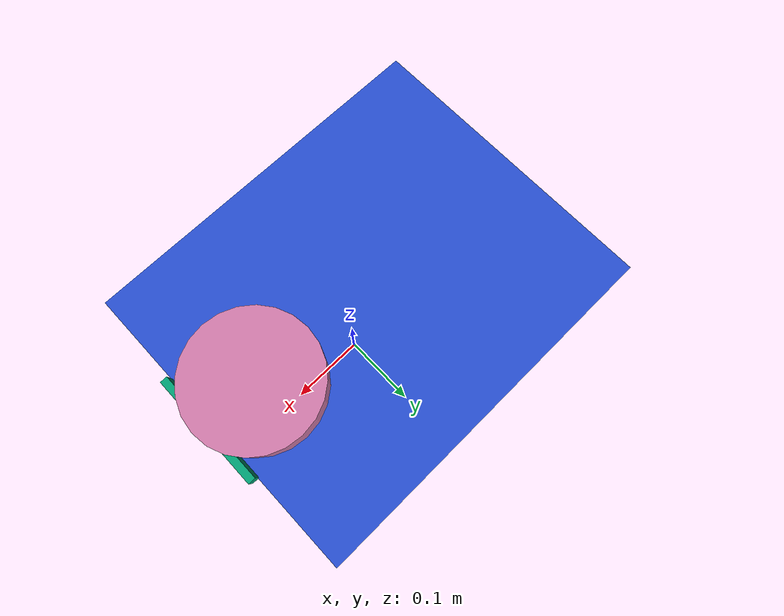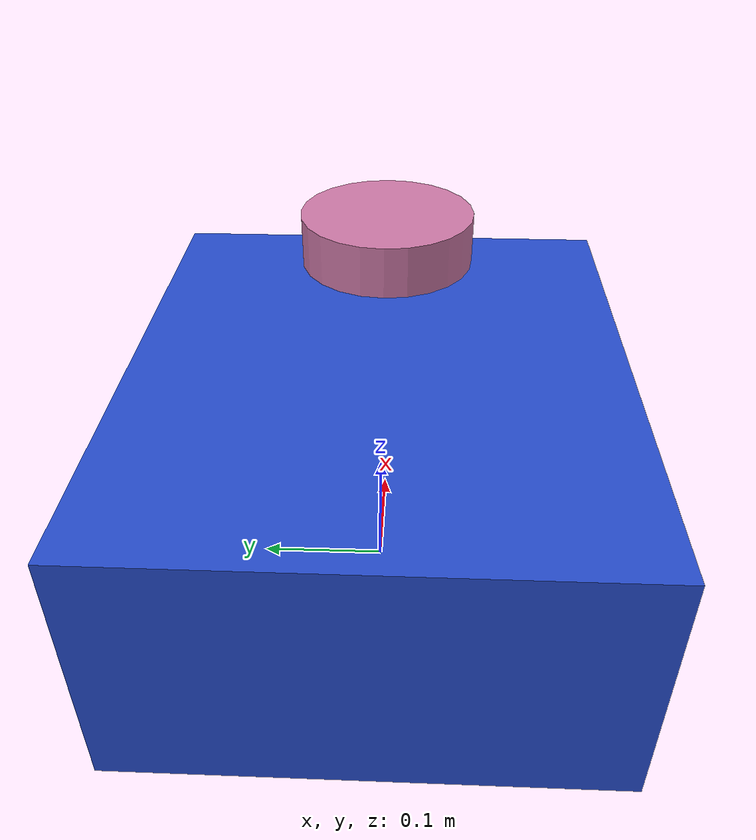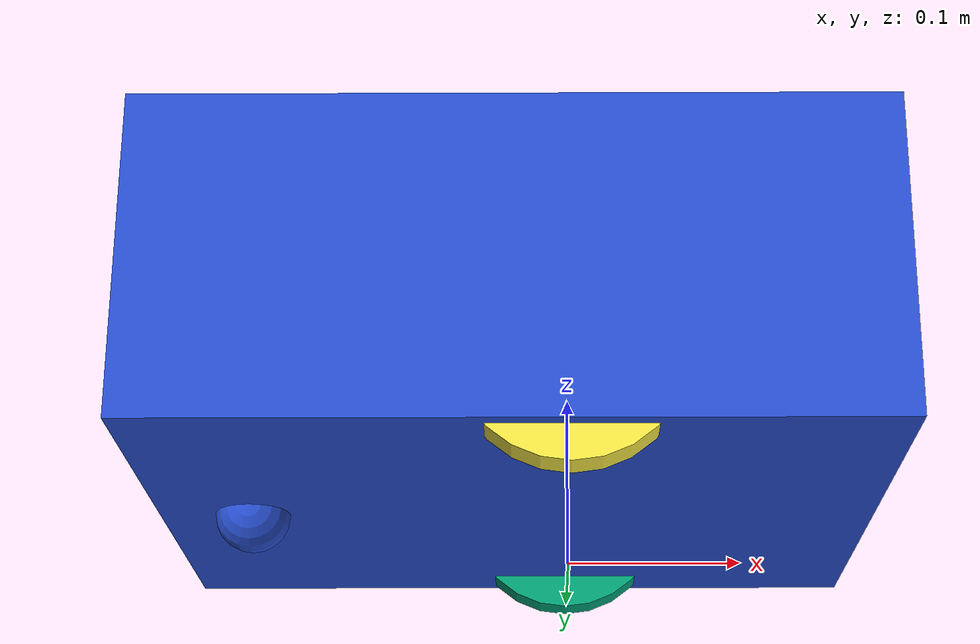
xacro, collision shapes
<?xml version="1.0" ?>
<robot name="AIEdu" xmlns:xacro="http://ros.org/wiki/xacro">
  <xacro:include filename="$(find robot_description)/urdf/common_properties.xacro"/>

  <xacro:property name="r200_cam_rgb_px" value="0.005"/>
  <xacro:property name="r200_cam_rgb_py" value="0.018"/>
  <xacro:property name="r200_cam_rgb_pz" value="0.013"/>
  <xacro:property name="r200_cam_depth_offset" value="0.01"/>

  <link name="base_footprint"/>

  <joint name="base_joint" type="fixed">
    <parent link="base_footprint"/>
    <child link="base_link" />
    <origin xyz="0 0 0.1225" rpy="0 0 0"/>
  </joint>

  <link name="base_link">
    <visual>
      <origin xyz="0.1275 0 0.0" rpy="0 0 0"/>
      <geometry>
        <box size="0.105 0.350 0.185"/>
      </geometry>
      <material name="blue"/>
    </visual>
    <visual>
      <origin xyz="0.0 0 0.0" rpy="0 0 0"/>
      <geometry>
        <box size="0.150 0.290 0.185"/>
      </geometry>
      <material name="blue"/>
    </visual>
    <visual>
      <origin xyz="-0.1575 0 0.0" rpy="0 0 0"/>
      <geometry>
        <box size="0.165 0.350 0.185"/>
      </geometry>
      <material name="blue"/>
    </visual>
    <collision>
      <origin xyz="-0.030 0 0.0" rpy="0 0 0"/>
      <geometry>
        <box size="0.420 0.350 0.185"/>
      </geometry>
    </collision>
    <inertial>
      <origin xyz="-0.030 0 0.0" rpy="0 0 0"/>
      <mass value="1"/>
      <inertia ixx="0.01" ixy="0.0" ixz="0.0"
               iyy="0.01" iyz="0.0"
               izz="0.01" />
    </inertial>
  </link>

  <joint name="wheel_left_joint" type="continuous">
    <parent link="base_link"/>
    <child link="wheel_left_link"/>
    <origin xyz="0.0 0.155 -0.050" rpy="${-M_PI*0.5} 0 0"/>
    <axis xyz="0 0 1"/>
  </joint>

  <link name="wheel_left_link">
    <visual>
      <origin xyz="0 0 0" rpy="${M_PI*0.5} 0 0"/>
      <geometry>
        <mesh filename="package://robot_description/meshes/wheels/left_tire.stl" scale="0.002045 0.00122 0.002045"/>
      </geometry>
      <material name="dark"/>
    </visual>
    <collision>
      <origin rpy="0 0 0" xyz="0 0 0"/>
      <geometry>
        <cylinder length="0.022" radius="0.0625"/>
      </geometry>
    </collision>
    <inertial>
      <origin xyz="0 0 0" />
      <mass value="0.01" />
      <inertia ixx="0.001" ixy="0.0" ixz="0.0"
               iyy="0.001" iyz="0.0"
               izz="0.001" />
    </inertial>
  </link>

  <joint name="wheel_right_joint" type="continuous">
    <parent link="base_link"/>
    <child link="wheel_right_link"/>
    <origin xyz="0.0 -0.155 -0.050" rpy="${-M_PI*0.5} 0 0"/>
    <axis xyz="0 0 1"/>
  </joint>

  <link name="wheel_right_link">
    <visual>
      <origin xyz="0 0 0" rpy="${M_PI*0.5} 0 0"/>
      <geometry>
        <mesh filename="package://robot_description/meshes/wheels/right_tire.stl" scale="0.002045 0.00122 0.002045"/>
      </geometry>
      <material name="dark"/>
    </visual>
    <collision>
      <origin rpy="0 0 0" xyz="0 0 0"/>
      <geometry>
        <cylinder length="0.022" radius="0.0625"/>
      </geometry>
    </collision>
    <inertial>
      <origin xyz="0 0 0" />
      <mass value="0.01" />
      <inertia ixx="0.001" ixy="0.0" ixz="0.0"
               iyy="0.001" iyz="0.0"
               izz="0.001" />
    </inertial>
  </link>

  <joint name="caster_back_joint" type="fixed">
    <parent link="base_link"/>
    <child link="caster_back_link"/>
    <origin xyz="-0.185 0 -0.093" rpy="${-M_PI*0.5} 0 0"/>
  </joint>

  <link name="caster_back_link">
    <visual>
      <origin xyz="0.0 0 0.0" rpy="0 0 0"/>
      <geometry>
        <sphere radius="0.022"/>
      </geometry>
      <material name="blue"/>
    </visual>
    <collision>
      <origin rpy="0 0 0" xyz="0 0 0"/>
      <geometry>
        <sphere radius="0.022"/>
      </geometry>
    </collision>

    <inertial>
      <origin xyz="0 0 0" />
      <mass value="0.01" />
      <inertia ixx="0.001" ixy="0.0" ixz="0.0"
               iyy="0.001" iyz="0.0"
               izz="0.001" />
    </inertial>
  </link>

  <joint name="imu_joint" type="fixed">
    <parent link="base_link"/>
    <child link="imu_link"/>
    <origin xyz="0.050 0 0" rpy="0 0 0"/>
  </joint>

  <link name="imu_link"/>

   <joint name="scan_joint" type="fixed">
    <parent link="base_link"/>
    <child link="base_scan"/>
    <origin xyz="0.120 0 0.120" rpy="0 0 0"/>
  </joint>

  <link name="base_scan">
    <visual>
      <origin xyz="0 0 0.0" rpy="0 0 0"/>
      <geometry>
        <mesh filename="package://robot_description/meshes/sensors/lds.stl" scale="0.001 0.001 0.001"/>
      </geometry>
      <material name="dark"/>
    </visual>
    <collision>
      <origin rpy="0 0 0" xyz="0 0 0"/>
      <geometry>
        <cylinder length="0.0408" radius="0.070"/>
      </geometry>
    </collision>
    <inertial>
      <mass value="0.01" />
      <origin xyz="0 0 0" />
      <inertia ixx="0.001" ixy="0.0" ixz="0.0"
               iyy="0.001" iyz="0.0"
               izz="0.001" />
    </inertial>
  </link>

  <joint name="ultrasonic_front_joint" type="fixed">
    <origin xyz="0.180 0.0 0.030" rpy="0 0 0"/>
    <axis xyz="0 0 0"/>
    <parent link="base_link"/>
    <child link="base_ultrasonic_front"/>
  </joint>

  <link name="base_ultrasonic_front"/>

  <joint name="ultrasonic_left_joint" type="fixed">
    <origin xyz="0.180 +0.03 0.020" rpy="0 0 ${M_PI/6}"/>
    <axis xyz="0 0 0"/>
    <parent link="base_link"/>
    <child link="base_ultrasonic_left"/>
  </joint>

  <link name="base_ultrasonic_left"/>

  <joint name="ultrasonic_right_joint" type="fixed">
    <origin xyz="0.180 -0.03 0.010" rpy="0 0 -${M_PI/6}"/>
    <axis xyz="0 0 0"/>
    <parent link="base_link"/>
    <child link="base_ultrasonic_right"/>
  </joint>

  <link name="base_ultrasonic_right"/>

  <joint name="camera_joint" type="fixed">
    <origin xyz="0.180 -0.065 0.090" rpy="0 0 0"/>
    <parent link="base_link"/>
    <child link="camera_link"/>
  </joint>

  <link name="camera_link">
    <visual>
     <origin xyz="0 0 0" rpy="${M_PI*0.5} 0 ${M_PI*0.5}"/>
      <geometry>
       <mesh filename="package://robot_description/meshes/sensors/r200.dae" />
      </geometry>
    </visual>
    <collision>
      <origin xyz="0.003 0.065 0.010" rpy="0 0 0"/>
      <geometry>
        <box size="0.008 0.130 0.022"/>
      </geometry>
    </collision>

    <!-- This inertial field needs doesn't contain reliable data!! -->
  </link>

  <joint name="camera_rgb_joint" type="fixed">
    <origin xyz="${r200_cam_rgb_px} ${r200_cam_rgb_py} ${r200_cam_rgb_pz}" rpy="0 0 0"/>
    <parent link="camera_link"/>
    <child link="camera_rgb_frame"/>
  </joint>
  <link name="camera_rgb_frame"/>

  <joint name="camera_rgb_optical_joint" type="fixed">
    <origin xyz="0 0 0" rpy="${-M_PI/2} 0 ${-M_PI/2}"/>
    <parent link="camera_rgb_frame"/>
    <child link="camera_rgb_optical_frame"/>
  </joint>
  <link name="camera_rgb_optical_frame"/>

  <joint name="camera_depth_joint" type="fixed">
    <origin xyz="${r200_cam_rgb_px} ${r200_cam_rgb_py + r200_cam_depth_offset} ${r200_cam_rgb_pz}" rpy="0 0 0"/>
    <parent link="camera_link"/>
    <child link="camera_depth_frame"/>
  </joint>
  <link name="camera_depth_frame"/>

  <joint name="camera_depth_optical_joint" type="fixed">
    <origin xyz="0 0 0" rpy="${-M_PI/2} 0 ${-M_PI/2}"/>
    <parent link="camera_depth_frame"/>
    <child link="camera_depth_optical_frame"/>
  </joint>
  <link name="camera_depth_optical_frame"/>

</robot>
